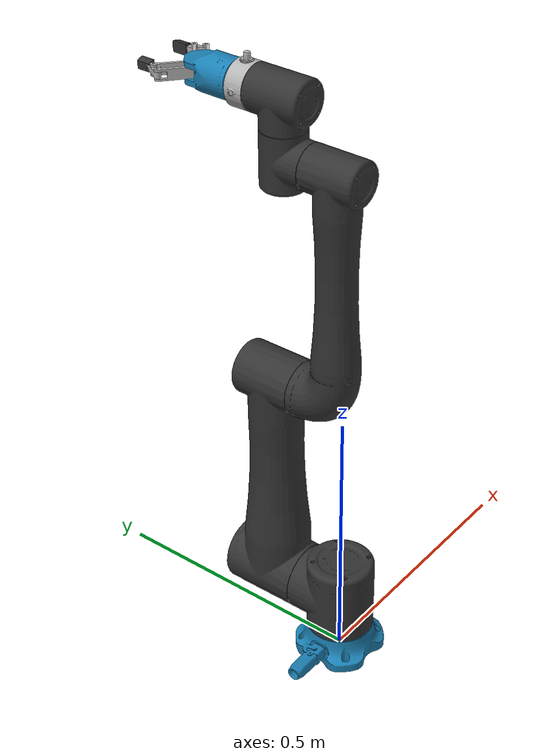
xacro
<?xml version="1.0"?>

<!-- Orion5 v1.66 arm + MC1 gripper. Single robot model used by Gazebo AND MoveIt
     (robot name must match orion5_moveit_config/config/orion5_v166.srdf). -->
<robot xmlns:xacro="http://wiki.ros.org/xacro" name="orion5_v166">

   <xacro:include filename="$(find orion5_description)/urdf/orion5_v166_arm.xacro"/>
   <xacro:include filename="$(find mcfly_grippers)/urdf/mc1_gripper.xacro"/>
   <xacro:include filename="$(find orion5_description)/urdf/transmissions.xacro"/>
   <xacro:include filename="$(find orion5_description)/urdf/gazebo_control.xacro"/>
   <xacro:include filename="$(find orion5_description)/urdf/colors.xacro"/>

   <link name="world"/>

   <joint name="world_fixed_joint" type="fixed">
      <origin xyz="0.0 0.0 0.0" rpy="0 0 0" />
      <parent link="world" />
      <child link="base_link" />
   </joint>

   <!-- eef_tcp_link (MoveIt tip) is placed at the MC1 fingertip TCP:
        eef_link -> gripper_base (0,0,0) -> gripper_tcp_link (0,0,mc1_tcp_offset_z) -->
   <xacro:orion5_v166 tcp_z="${mc1_tcp_offset_z}"/>

   <joint name="gripper_base_fixed_joint" type="fixed">
      <origin xyz="0.0 0.0 0.0" rpy="0 0 0" />
      <parent link="eef_link" />
      <child link="gripper_base" />
   </joint>

   <xacro:mc1_gripper />

   <xacro:transmissions />
   <xacro:gazebo_control />
   <xacro:colors />

</robot>

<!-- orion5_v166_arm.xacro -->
<robot xmlns:xacro="http://wiki.ros.org/xacro">

    <!-- tcp_z: offset of the MoveIt tip link (eef_tcp_link) from eef_link along +Z.
         0.0 for the bare arm; the MC1 robot xacro passes the gripper TCP offset. -->
    <xacro:macro name="orion5_v166" params="tcp_z:=0.0">

        <link name="base_link">
            <inertial>
                <origin rpy="0 0 3.92699081" xyz="0.0014872 0.025681 0.0015954"/>
                <mass value="0.43234"/>
                <inertia ixx="0.00085424" ixy="-4.256E-07" ixz="1.7204E-05" iyy="0.0014489" iyz="-3.1849E-07" izz="0.00085002"/>
            </inertial>
            <visual>
                <origin rpy="0 0 3.92699081" xyz="0 0 0"/>
                <geometry>
                    <mesh filename="package://orion5_description/meshes/base_link.STL"/>
                </geometry>
                <material name="blue">
                </material>
            </visual>
            <collision>
                <origin rpy="0 0 3.92699081" xyz="0 0 0"/>
                <geometry>
                    <mesh filename="package://orion5_description/meshes/base_link.STL"/>
                </geometry>
            </collision>
        </link>

        <joint name="joint_1" type="revolute">
            <origin xyz="0 0 0.05375" rpy="0 0 0.7853981" />
            <parent link="base_link" />
            <child link="link_1" />
            <axis xyz="0 0 -1" />
            <limit lower="-3.14" upper="3.14" effort="200" velocity="1.57" />
            <dynamics damping="0.1" friction="0.1"/>
        </joint>

        <link name="link_1">
            <inertial>
                <origin rpy="0 0 0" xyz="0.0032053 0.0032066 0.071258"/>
                <mass value="1.4977"/>
                <inertia ixx="0.0040548" ixy="-6.3827e-05" ixz="1.9488e-05" iyy="0.0040547" iyz="1.9457e-05" izz="0.003024"/>
            </inertial>
            <visual>
                <origin rpy="0 0 0" xyz="0 0 0"/>
                <geometry>
                    <mesh filename="package://orion5_description/meshes/link_1.STL"/>
                </geometry>
                <material name="black">
                </material>
            </visual>
            <collision>
                <origin rpy="0 0 0" xyz="0 0 0"/>
                <geometry>
                    <mesh filename="package://orion5_description/meshes/link_1.STL"/>
                </geometry>
            </collision>
        </link>

        <joint name="joint_2" type="revolute">
            <origin xyz="0.044371 0.044371 0.06825" rpy="-1.5708 0 -0.7854" />
            <parent link="link_1" />
            <child link="link_2" />
            <axis xyz="0 0 -1" />
            <limit lower="-3.14" upper="3.14" effort="200" velocity="1.57" />
            <dynamics damping="0.1" friction="0.1"/>
        </joint>

        <link name="link_2">
            <inertial>
                <origin rpy="0 0 0" xyz="-0.011965 -0.20398 0.082482"/>
                <mass value="3.9537"/>
                <inertia ixx="0.14571" ixy="0.0011447" ixz="-8.9776e-05" iyy="0.0068268" iyz="-0.00039373" izz="0.14325"/>
            </inertial>
            <visual>
                <origin rpy="0 0 0" xyz="0 0 0"/>
                <geometry>
                    <mesh filename="package://orion5_description/meshes/link_2.STL"/>
                </geometry>
                <material name="black">
                </material>
            </visual>
            <collision>
                <origin rpy="0 0 0" xyz="0 0 0"/>
                <geometry>
                    <mesh filename="package://orion5_description/meshes/link_2.STL"/>
                </geometry>
            </collision>
        </link>

        <joint name="joint_3" type="revolute">
            <origin xyz="0 -0.421 0.02325" rpy="-3.1416 0 0" />
            <parent link="link_2" />
            <child link="link_3" />
            <axis xyz="0 0 -1" />
            <limit lower="-2.8" upper="2.8" effort="200" velocity="1.57" />
            <dynamics damping="0.1" friction="0.1"/>
        </joint>

        <link name="link_3">
            <inertial>
                <origin rpy="0 0 0" xyz="-0.0003235 0.25691 0.062797"/>
                <mass value="1.0868"/>
                <inertia ixx="0.0084673" ixy="-4.0465e-05" ixz="-1.4163e-06" iyy="0.0014603" iyz="-0.00016568" izz="0.0081904"/>
            </inertial>
            <visual>
                <origin rpy="0 0 0" xyz="0 0 0"/>
                <geometry>
                    <mesh filename="package://orion5_description/meshes/link_3.STL"/>
                </geometry>
                <material name="black">
                </material>
            </visual>
            <collision>
                <origin rpy="0 0 0" xyz="0 0 0"/>
                <geometry>
                    <mesh filename="package://orion5_description/meshes/link_3.STL"/>
                </geometry>
            </collision>
        </link>

        <joint name="joint_4" type="revolute">
            <origin xyz="0 0.427 0.018" rpy="-3.1416 0 0" />
            <parent link="link_3" />
            <child link="link_4" />
            <axis xyz="0 0 -1" />
            <limit lower="-3.14" upper="3.14" effort="200" velocity="1.57" />
            <dynamics damping="0.1" friction="0.1"/>
        </joint>

        <link name="link_4">
            <inertial>
                <origin rpy="0 0 0" xyz="0.00067229 -0.010802 0.051025"/>
                <mass value="0.50427"/>
                <inertia ixx="0.00065514" ixy="-1.9544e-06" ixz="1.7674e-07" iyy="0.00043345" iyz="2.2995e-06" izz="0.00063832"/>
            </inertial>
            <visual>
                <origin rpy="0 0 0" xyz="0 0 0"/>
                <geometry>
                    <mesh filename="package://orion5_description/meshes/link_4.STL"/>
                </geometry>
                <material name="black">
                </material>
            </visual>
            <collision>
                <origin rpy="0 0 0" xyz="0 0 0"/>
                <geometry>
                    <mesh filename="package://orion5_description/meshes/link_4.STL"/>
                </geometry>
            </collision>
        </link>

        <joint name="joint_5" type="revolute">
            <origin xyz="0 -0.052 0.053" rpy="1.5708 -0.7854 0" />
            <parent link="link_4" />
            <child link="link_5" />
            <axis xyz="0 0 -1" />
            <limit lower="-3.14" upper="3.14" effort="200" velocity="1.57" />
            <dynamics damping="0.1" friction="0.1"/>
        </joint>

        <link name="link_5">
            <inertial>
                <origin rpy="0 0 0" xyz="-0.0023932 -0.0027963 0.046475"/>
                <mass value="0.23998"/>
                <inertia ixx="0.00019279" ixy="-1.1587e-05" ixz="1.866e-06" iyy="0.00019279" iyz="1.7368e-06" izz="0.00019816"/>
            </inertial>
            <visual>
                <origin rpy="0 0 0" xyz="0 0 0"/>
                <geometry>
                    <mesh filename="package://orion5_description/meshes/link_5.STL"/>
                </geometry>
                <material name="black">
                </material>
            </visual>
            <collision>
                <origin rpy="0 0 0" xyz="0 0 0"/>
                <geometry>
                    <mesh filename="package://orion5_description/meshes/link_5.STL"/>
                </geometry>
            </collision>
        </link>

        <joint name="joint_6" type="revolute">
            <origin xyz="0.031289 0.031289 0.053" rpy="-1.5708 0 -0.7854" />
            <parent link="link_5" />
            <child link="link_6" />
            <axis xyz="0 0 -1" />
            <limit lower="-3.14" upper="3.14" effort="200" velocity="1.57" />
            <dynamics damping="0.1" friction="0.1"/>
        </joint>

        <link name="link_6">
            <inertial>
                <origin rpy="0 0 0" xyz="-0.00030609 -0.00064718 0.026501"/>
                <mass value="0.0029836"/>
                <inertia ixx="9.0087e-05" ixy="2.945e-08" ixz="-1.0412e-07" iyy="8.7872e-05" iyz="-9.2359e-08" izz="0.00013295"/>
            </inertial>
            <visual>
                <origin rpy="0 0 0" xyz="0 0 0"/>
                <geometry>
                    <mesh filename="package://orion5_description/meshes/link_6.STL"/>
                </geometry>
                <material name="gray">
                </material>
            </visual>
            <collision>
                <origin rpy="0 0 0" xyz="0 0 0"/>
                <geometry>
                    <mesh filename="package://orion5_description/meshes/link_6.STL"/>
                </geometry>
            </collision>
        </link>

        <joint name="eef_fixed_joint" type="fixed">
            <origin rpy="0 0 0" xyz="0 0 0.047"/>
            <parent link="link_6"/>
            <child link="eef_link"/>
        </joint>

        <link name="eef_link">
            <inertial>
                <origin rpy="0 0 0" xyz="0 0 0"/>
                <mass value="0.00001"/>
                <inertia ixx="0" ixy="0" ixz="0" iyy="0" iyz="0" izz="0"/>
            </inertial>
        </link>

        <!-- MoveIt planning tip (SRDF group orion5_arm: base_link -> eef_tcp_link) -->
        <joint name="eef_tcp_fixed_joint" type="fixed">
            <origin rpy="0 0 0" xyz="0 0 ${tcp_z}"/>
            <parent link="eef_link"/>
            <child link="eef_tcp_link"/>
        </joint>

        <link name="eef_tcp_link">
            <inertial>
                <origin rpy="0 0 0" xyz="0 0 0"/>
                <mass value="0.00001"/>
                <inertia ixx="0" ixy="0" ixz="0" iyy="0" iyz="0" izz="0"/>
            </inertial>
        </link>

    </xacro:macro>

</robot>

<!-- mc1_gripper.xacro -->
<robot xmlns:xacro="http://wiki.ros.org/xacro">

    <!-- Distance from gripper_base to the fingertip TCP along +Z (used by tcp_fixed_joint below
         and by the arm xacro so that eef_tcp_link coincides with gripper_tcp_link). -->
    <xacro:property name="mc1_tcp_offset_z" value="0.17"/>

    <xacro:macro name="mc1_gripper">

        <!-- base -->

        <link name="gripper_base">
            <inertial>
                <origin xyz="4.4451E-06 0.036242 5.3571E-06" rpy="0 0 0" />
                <mass value="0.71705" />
                <inertia ixx="0.00058422" ixy="6.8654E-08" ixz="-1.0232E-07" iyy="0.00041857" iyz="-6.8207E-07" izz="0.00059057" />
            </inertial>
            <visual>
                <origin xyz="0 0 0" rpy="0 0 0" />
                <geometry>
                    <mesh filename="package://mcfly_grippers/meshes/mc1/gripper_base.STL" />
                </geometry>
                <material name="blue">
                </material>
            </visual>
        </link>

        <!-- Left Parts of Gripper -->

        <joint name="grip_joint_1_left" type="revolute">
            <origin xyz="0.01694 0 0.076" rpy="1.5707963267949 -0.860305 3.14159265358979" />
            <parent link="gripper_base" />
            <child link="left_link_1" />
            <axis xyz="0 0 -1" />
            <limit lower="-0.78" upper="0.78" effort="20" velocity="1.57" />
        </joint>

        <link name="left_link_1">
            <inertial>
                <origin xyz="0.000598859748040793 0.0120833705379146 -6.02625100271384E-17" rpy="0 0 0" />
                <mass value="0.00272921383904814" />
                <inertia ixx="1.01764599926882E-05" ixy="9.46828814762395E-07" ixz="-1.00065513656923E-22" iyy="1.53812754230838E-06" iyz="2.08784003221063E-22" izz="9.82357676644471E-06" />
            </inertial>
            <visual>
                <origin xyz="0 0 0" rpy="0 0 0" />
                <geometry>
                    <mesh filename="package://mcfly_grippers/meshes/mc1/left_link_1.STL" />
                </geometry>
                <material name="gray">
                </material>
            </visual>
        </link>

        <joint name="grip_joint_2_left" type="revolute">
            <origin xyz="0.00743999999999995 0 0.0924544826719043" rpy="1.5707963267949 -0.860305 3.14159265358979" />
            <parent link="gripper_base" />
            <child link="left_link_2" />
            <axis xyz="0 0 -1" />
            <limit lower="-0.78" upper="0.78" effort="20" velocity="1.57" />
        </joint>

        <link name="left_link_2">
            <inertial>
                <origin xyz="3.46944695195361E-18 0.0235968432148938 -8.34340430633077E-18" rpy="0 0 0" />
                <mass value="0.00156619385650869" />
                <inertia ixx="5.52433634457438E-06" ixy="1.98523347012727E-22" ixz="1.85003926977737E-23" iyy="6.20355055842597E-07" iyz="6.58866802763897E-22" izz="5.02647726006852E-06" />
            </inertial>
            <visual>
                <origin xyz="0 0 0" rpy="0 0 0" />
                <geometry>
                    <mesh filename="package://mcfly_grippers/meshes/mc1/left_link_2.STL" />
                </geometry>
                <material name="gray">
                </material>
            </visual>
        </link>

        <joint name="grip_joint_3_left" type="revolute">
            <origin xyz="0 0.055 0" rpy="3.14159265358979 0 2.28128699" />
            <parent link="left_link_1" />
            <child link="left_link_3" />
            <axis xyz="0 0 -1" />
            <limit lower="-0.78" upper="0.78" effort="20" velocity="1.57" />
        </joint>

        <link name="left_link_3">
            <inertial>
                <origin xyz="-0.0094699 0.023352 -1.4095E-18" rpy="0 0 0" />
                <mass value="0.0014832" />
                <inertia ixx="3.3814E-06" ixy="9.4453E-07" ixz="-1.8366E-22" iyy="6.7069E-07" iyz="-1.0099E-22" izz="3.753E-06" />
            </inertial>
            <visual>
                <origin xyz="0 0 0" rpy="0 0 0" />
                <geometry>
                    <mesh filename="package://mcfly_grippers/meshes/mc1/left_link_3.STL" />
                </geometry>
                <material name="gray">
                </material>
            </visual>
        </link>

        <joint name="left_finger_fixed_joint" type="fixed">
            <origin xyz="-0.0209999999999626 0.0494544826718965 0.000449999999999937" rpy="1.57079632679489 1.5707963267949 0" />
            <parent link="left_link_3" />
            <child link="left_finger" />
        </joint>

        <link name="left_finger">
            <inertial>
                <origin xyz="1.2875E-19 0.0060378 0.01128" rpy="0 0 0" />
                <mass value="0.0016879" />
                <inertia ixx="1.2157E-06" ixy="5.2616E-22" ixz="4.5449E-24" iyy="1.4634E-06" iyz="-2.2785E-08" izz="7.0267E-07" />
            </inertial>
            <visual>
                <origin xyz="0 0 0" rpy="0 0 0" />
                <geometry>
                    <mesh filename="package://mcfly_grippers/meshes/mc1/left_finger.STL" />
                </geometry>
                <material name="black">
                </material>
            </visual>
        </link>

        <!-- Right Parts of Gripper -->

        <joint name="grip_joint_1_right" type="revolute">
            <origin xyz="-0.01694 0 0.076" rpy="1.5708 -0.860305 0" />
            <parent link="gripper_base" />
            <child link="right_link_1" />
            <axis xyz="0 0 1" />
            <limit lower="-0.78" upper="0.78" effort="20" velocity="1.57" />
        </joint>

        <link name="right_link_1">
            <inertial>
                <origin xyz="0.00059886 0.012083 6.5023E-17" rpy="0 0 0" />
                <mass value="0.0027292" />
                <inertia ixx="1.0176E-05" ixy="9.4683E-07" ixz="1.5618E-22" iyy="1.5381E-06" iyz="-1.3566E-21" izz="9.8236E-06" />
            </inertial>
            <visual>
                <origin xyz="0 0 0" rpy="0 0 0" />
                <geometry>
                    <mesh filename="package://mcfly_grippers/meshes/mc1/right_link_1.STL" />
                </geometry>
                <material name="gray">
                </material>
            </visual>
        </link>

        <joint name="grip_joint_2_right" type="revolute">
            <origin xyz="-0.00744 0 0.0924544826719043" rpy="1.5707963267949 0.85 -3.14159265358979" />
            <parent link="gripper_base" />
            <child link="right_link_2" />
            <axis xyz="0 0 -1" />
            <limit lower="-0.78" upper="0.78" effort="20" velocity="1.57" />
        </joint>

        <link name="right_link_2">
            <inertial>
                <origin xyz="0 0 0" rpy="0 0 0" />
                <mass value="0.00156619385650869" />
                <inertia ixx="5.52433634457438E-06" ixy="1.98523347012727E-22" ixz="1.85003926977737E-23" iyy="6.20355055842597E-07" iyz="6.58866802763897E-22" izz="5.02647726006852E-06" />
            </inertial>
            <visual>
                <origin xyz="0 0 0" rpy="0 0 0" />
                <geometry>
                    <mesh filename="package://mcfly_grippers/meshes/mc1/right_link_2.STL" />
                </geometry>
                <material name="gray">
                </material>
            </visual>
        </link>

        <joint name="grip_joint_3_right" type="revolute">
            <origin xyz="0 0.055 0" rpy="3.14159265358979 0 2.27609" />
            <parent link="right_link_1" />
            <child link="right_link_3" />
            <axis xyz="0 0 1" />
            <limit lower="-0.78" upper="0.78" effort="20" velocity="1.57" />
        </joint>

        <link name="right_link_3">
            <inertial>
                <origin xyz="-0.0094699 0.023352 1.4637E-17" rpy="0 0 0" />
                <mass value="0.0014832" />
                <inertia ixx="3.3814E-06" ixy="9.4453E-07" ixz="5.4317E-22" iyy="6.7069E-07" iyz="-2.1193E-21" izz="3.753E-06" />
            </inertial>
            <visual>
                <origin xyz="0 0 0" rpy="0 0 0" />
                <geometry>
                    <mesh filename="package://mcfly_grippers/meshes/mc1/right_link_3.STL" />
                </geometry>
                <material name="gray">
                </material>
            </visual>
        </link>

        <joint name="right_finger_fixed_joint" type="fixed">
            <origin xyz="-0.0210000000000008 0.0494544826719043 -0.000549999999999965" rpy="1.5707963267949 1.5707963267949 0" />
            <parent link="right_link_3" />
            <child link="right_finger" />
        </joint>

        <link name="right_finger">
            <inertial>
                <origin xyz="7.96210970419042E-18 0.00603784551449024 0.0112801430653363" rpy="0 0 0" />
                <mass value="0.00168787458449326" />
                <inertia ixx="1.21565978691012E-06" ixy="8.68770670628514E-22" ixz="3.33090927706253E-23" iyy="1.46343825235078E-06" iyz="-2.27847839048255E-08" izz="7.02668165047199E-07" />
            </inertial>
            <visual>
                <origin xyz="0 0 0" rpy="0 0 0" />
                <geometry>
                    <mesh filename="package://mcfly_grippers/meshes/mc1/right_finger.STL" />
                </geometry>
                <material name="black">
                </material>
            </visual>
        </link>

        <!-- TCP Link -->

        <joint name="tcp_fixed_joint" type="fixed">
            <origin rpy="0 0 0" xyz="0 0 ${mc1_tcp_offset_z}"/>
            <parent link="gripper_base"/>
            <child link="gripper_tcp_link"/>
        </joint>

        <link name="gripper_tcp_link">
            <inertial>
                <origin rpy="0 0 0" xyz="0 0 0"/>
                <mass value="0.00001"/>
                <inertia ixx="0" ixy="0" ixz="0" iyy="0" iyz="0" izz="0"/>
            </inertial>
        </link>

        <!-- Gazebo Ros Transmission -->
        <transmission name="grip_joint_1_left_trans">
            <type>transmission_interface/SimpleTransmission</type>
            <joint name="grip_joint_1_left">
                <hardwareInterface>hardware_interface/PositionJointInterface</hardwareInterface>
            </joint>
            <actuator name="grip_joint_1_left_motor">
                <hardwareInterface>hardware_interface/PositionJointInterface</hardwareInterface>
                <mechanicalReduction>1</mechanicalReduction>
            </actuator>
        </transmission>

        <transmission name="grip_joint_2_left_trans">
            <type>transmission_interface/SimpleTransmission</type>
            <joint name="grip_joint_2_left">
                <hardwareInterface>hardware_interface/PositionJointInterface</hardwareInterface>
            </joint>
            <actuator name="grip_joint_2_left_motor">
                <hardwareInterface>hardware_interface/PositionJointInterface</hardwareInterface>
                <mechanicalReduction>1</mechanicalReduction>
            </actuator>
        </transmission>

        <transmission name="grip_joint_3_left_trans">
            <type>transmission_interface/SimpleTransmission</type>
            <joint name="grip_joint_3_left">
                <hardwareInterface>hardware_interface/PositionJointInterface</hardwareInterface>
            </joint>
            <actuator name="grip_joint_3_left_motor">
                <hardwareInterface>hardware_interface/PositionJointInterface</hardwareInterface>
                <mechanicalReduction>1</mechanicalReduction>
            </actuator>
        </transmission>

        <transmission name="grip_joint_1_right_trans">
            <type>transmission_interface/SimpleTransmission</type>
            <joint name="grip_joint_1_right">
                <hardwareInterface>hardware_interface/PositionJointInterface</hardwareInterface>
            </joint>
            <actuator name="grip_joint_1_right_motor">
                <hardwareInterface>hardware_interface/PositionJointInterface</hardwareInterface>
                <mechanicalReduction>1</mechanicalReduction>
            </actuator>
        </transmission>

        <transmission name="grip_joint_2_right_trans">
            <type>transmission_interface/SimpleTransmission</type>
            <joint name="grip_joint_2_right">
                <hardwareInterface>hardware_interface/PositionJointInterface</hardwareInterface>
            </joint>
            <actuator name="grip_joint_2_right_motor">
                <hardwareInterface>hardware_interface/PositionJointInterface</hardwareInterface>
                <mechanicalReduction>1</mechanicalReduction>
            </actuator>
        </transmission>

        <transmission name="grip_joint_3_right_trans">
            <type>transmission_interface/SimpleTransmission</type>
            <joint name="grip_joint_3_right">
                <hardwareInterface>hardware_interface/PositionJointInterface</hardwareInterface>
            </joint>
            <actuator name="grip_joint_3_right_motor">
                <hardwareInterface>hardware_interface/PositionJointInterface</hardwareInterface>
                <mechanicalReduction>1</mechanicalReduction>
            </actuator>
        </transmission>

        <!-- Gazebo Colors -->
        <gazebo reference="gripper_base">
            <material>Gazebo/SkyBlue</material>
        </gazebo>
        <gazebo reference="left_link_1">
            <material>Gazebo/Gray</material>
        </gazebo>
        <gazebo reference="left_link_2">
            <material>Gazebo/Gray</material>
        </gazebo>
        <gazebo reference="left_link_3">
            <material>Gazebo/Gray</material>
        </gazebo>
        <gazebo reference="left_finger">
            <material>Gazebo/DarkGray</material>
        </gazebo>
        <gazebo reference="right_link_1">
            <material>Gazebo/Gray</material>
        </gazebo>
        <gazebo reference="right_link_2">
            <material>Gazebo/Gray</material>
        </gazebo>
        <gazebo reference="right_link_3">
            <material>Gazebo/Gray</material>
        </gazebo>
        <gazebo reference="right_finger">
            <material>Gazebo/DarkGray</material>
        </gazebo>

    </xacro:macro>

</robot>

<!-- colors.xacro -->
<robot xmlns:xacro="http://wiki.ros.org/xacro">

    <xacro:macro name="colors">

        <material name="black">
            <color rgba="0.2 0.2 0.2 1.0" />
        </material>
        <material name="gray">
            <color rgba="0.7 0.7 0.7 1.0" />
        </material>
        <material name="blue">
            <color rgba="0.1 0.5 0.7 1.0" />
        </material>

    </xacro:macro>

</robot>
